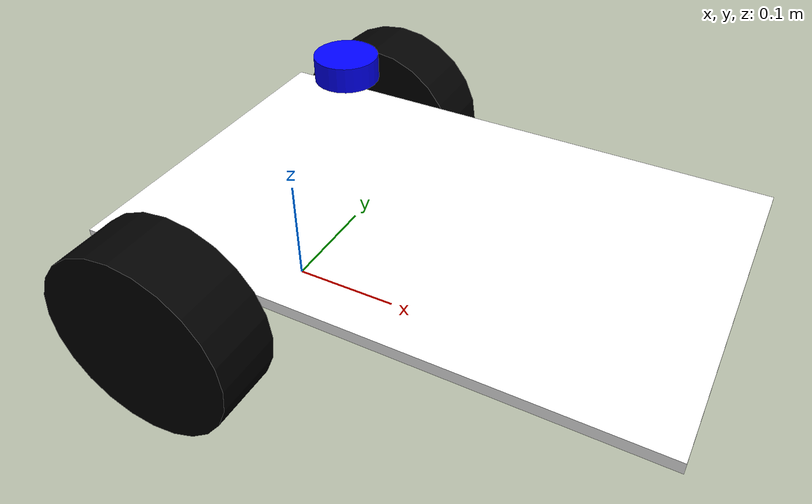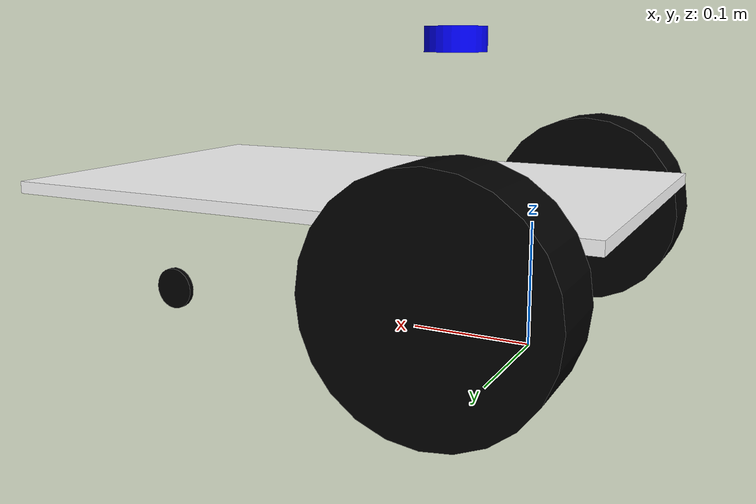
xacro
<?xml version="1.0" ?>
<robot name="diglobot2">
  <link name="base_link">
    <visual>
      <geometry>
        <box size="0.48 0.3 0.01"/>
      </geometry>
      <origin rpy="0 0 0" xyz="0.15 0 0.12"/>
      <material name="white">
        <color rgba="1 1 1 1"/>
      </material>
    </visual>
  </link>

  <link name="lwheel">
    <visual>
      <geometry>
        <cylinder length="0.060" radius="0.085"/>
      </geometry>
      <origin rpy="0 0 0" xyz="0 0 0"/>
      <material name="black">
        <color rgba="0 0 0 1"/>
      </material>
    </visual>
  </link>

  <link name="rwheel">
    <visual>
      <geometry>
        <cylinder length="0.060" radius="0.085"/>
      </geometry>
      <origin rpy="0 0 0" xyz="0 0 0"/>
      <material name="black">
        <color rgba="0 0 0 1"/>
      </material>
    </visual>
  </link>

  <link name="fwheel">
    <visual>
      <geometry>
        <cylinder length="0.005" radius="0.020"/>
      </geometry>
      <origin rpy="0 0 0" xyz="0.0 0 0"/>
      <material name="black">
        <color rgba="0 0 0 1"/>
      </material>
    </visual>
  </link>

  <link name="scanner">
    <visual>
      <geometry>
        <cylinder length="0.02" radius="0.025"/>
      </geometry>
      <origin rpy="0 0 0" xyz="0.022 0 0.015"/>
      <material name="blue">
        <color rgba="0 0 1 1"/>
      </material>
    </visual>
  </link>

  <joint name="base_to_lwheel" type="fixed">
    <parent link="base_link"/>
    <child link="lwheel"/>
    <origin xyz="0 0.18 0.085" rpy="1.5708 0 0"/>
  </joint>

  <joint name="base_to_rwheel" type="fixed">
    <parent link="base_link"/>
    <child link="rwheel"/>
    <origin xyz="0 -0.18 0.085" rpy="-1.5708 0 0"/>
  </joint>

  <joint name="base_to_scanner" type="fixed">
    <parent link="base_link"/>
    <child link="scanner"/>
    <origin xyz="0.045 0 0.225" rpy="0 0 0"/>
  </joint>

  <joint name="base_to_fwheel" type="fixed">
    <parent link="base_link"/>
    <child link="fwheel"/>
    <origin xyz="0.36 0.0 0.0" rpy="1.578 0 0"/>
  </joint>

</robot>
